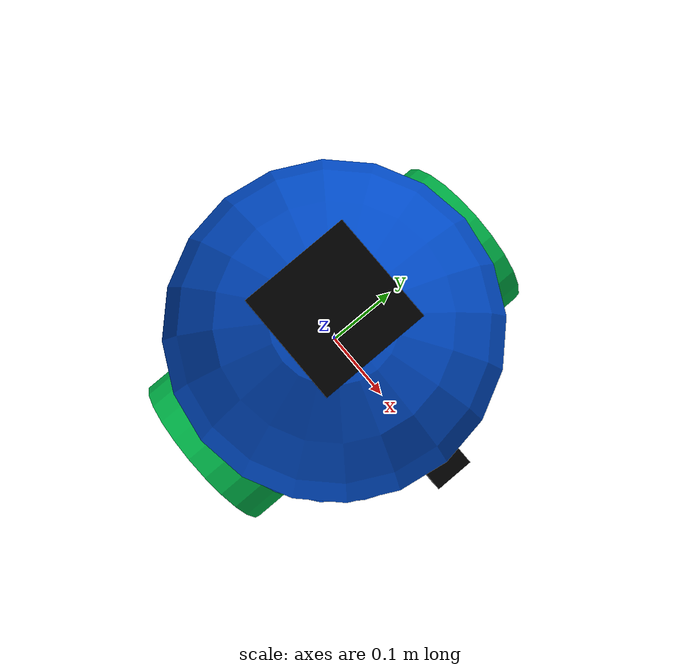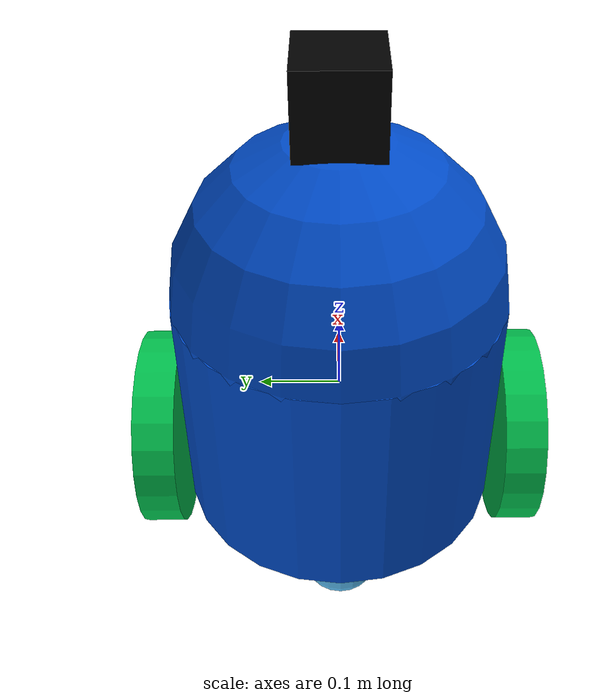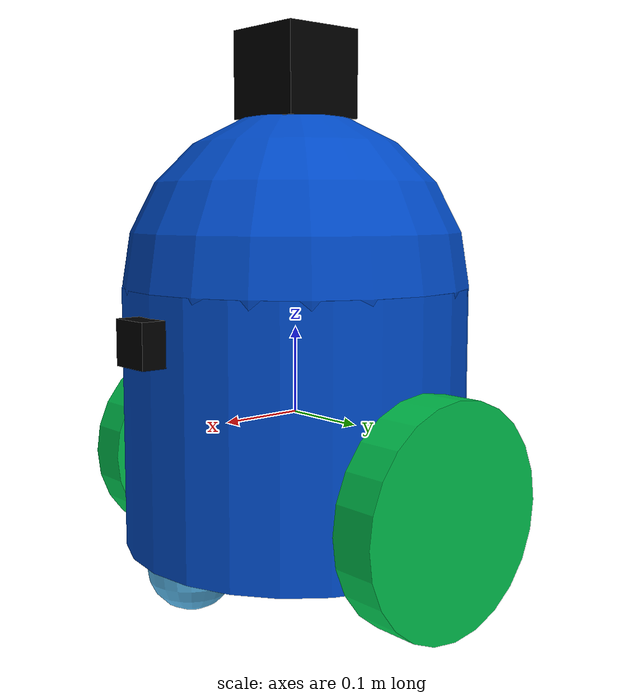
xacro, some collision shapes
<?xml version='1.0'?>

<robot name="my_robot" xmlns:xacro="http://www.ros.org/wiki/xacro">

  <xacro:include filename="$(find my_robot)/urdf/my_robot.gazebo" />

  <material name="blue">
    <color rgba="0 0.3 0.8 1"/>
  </material>

  <material name="green">
     <color rgba="0 0.75 0.3 1"/>
  </material>

  <material name="black">
     <color rgba="0. 0 0. 1"/>
  </material>

  <link name="robot_footprint"></link>

  <joint name="robot_footprint_joint" type="fixed">
    <origin xyz="0 0 0" rpy="0 0 0" />
    <parent link="robot_footprint"/>
    <child link="chassis" />
  </joint>

  <link name='chassis'>
    <pose>0 0 0.1 0 0 0</pose>

    <inertial>
      <mass value="15.0"/>
      <origin xyz="0.0 0 .1" rpy=" 0 0 0"/>
      <inertia
          ixx="0.1" ixy="0" ixz="0"
          iyy="0.1" iyz="0"
          izz="0.1"
      />
    </inertial>

    // HEAD
    <collision>
      <origin xyz="0 0 0.15" rpy=" 0 0 0"/>
      <geometry>
        <sphere radius=".2"/>
      </geometry>
    </collision>

    <visual>
      <origin xyz="0 0 0.15" rpy=" 0 0 0"/>
      <geometry>
        <sphere radius=".2"/>
      </geometry>
      <material name="blue"/>
    </visual>

    <collision name='chasis_collision'>
      <origin xyz="0 0 0" rpy=" 0 0 0"/>
      <geometry>
        <cylinder radius=".2" length=".3"/>
      </geometry>
    </collision>

    <visual name='chassis_visual'>
      <origin xyz="0 0 0" rpy=" 0 0 0"/>
      <geometry>
        <cylinder radius=".2" length=".3"/>
      </geometry>
      <material name="blue"/>
    </visual>

    <collision name='back_caster_collision'>
      <origin xyz="-0.15 0 -0.15" rpy=" 0 0 0"/>
      <geometry>
        <sphere radius="0.0499"/>
      </geometry>
    </collision>

    <visual name='back_caster_visual'>
      <origin xyz="-0.15 0 -0.15" rpy=" 0 0 0"/>
      <geometry>
        <sphere radius="0.05"/>
      </geometry>
      <material name="fuchsia"/>
    </visual>

    <collision name='front_caster_collision'>
      <origin xyz="0.15 0 -0.15" rpy=" 0 0 0"/>
      <geometry>
        <sphere radius="0.0499"/>
      </geometry>
    </collision>

    <visual name='front_caster_visual'>
      <origin xyz="0.15 0 -0.15" rpy=" 0 0 0"/>
      <geometry>
        <sphere radius="0.05"/>
      </geometry>
      <material name="fuchsia"/>
    </visual>
  </link>

  <link name ='right_wheel'>

   <inertial>
     <mass value="5.0"/>
     <origin xyz="0 0 0" rpy="0 1.5707 1.5707"/>
     <inertia
         ixx="0.1" ixy="0" ixz="0"
         iyy="0.1" iyz="0"
         izz="0.1"
     />
   </inertial>

    <visual name="right_wheel_visual">
      <origin xyz="0 0 0" rpy="0 1.5707 1.5707"/>
      <geometry>
        <cylinder radius="0.125" length="0.05"/>
      </geometry>
      <material name="green"/>
    </visual>

    <collision name="right_wheel_collision">
      <origin xyz="0 0 0" rpy="0 1.5707 1.5707"/>
      <geometry>
        <cylinder radius="0.125" length="0.05"/>
      </geometry>
    </collision>

  </link>

  <link name ='left_wheel'>

   <inertial>
     <mass value="5.0"/>
     <origin xyz="0 0 0" rpy="0 1.5707 1.5707"/>
     <inertia
         ixx="0.1" ixy="0" ixz="0"
         iyy="0.1" iyz="0"
         izz="0.1"
     />
   </inertial>

    <visual name="left_wheel_visual">
      <origin xyz="0 0 0" rpy="0 1.5707 1.5707"/>
      <geometry>
        <cylinder radius="0.125" length="0.05"/>
      </geometry>
      <material name="green"/>
    </visual>

    <collision name="left_wheel_collision">
      <origin xyz="0 0 0" rpy="0 1.5707 1.5707"/>
      <geometry>
        <cylinder radius="0.125" length="0.05"/>
      </geometry>
    </collision>

  </link>

  <joint type="continuous" name="right_wheel_hinge">
    <origin xyz="0 -0.225 -0.075" rpy="0 0 0"/>
    <child link="right_wheel"/>
    <parent link="chassis"/>
    <axis xyz="0 1 0" rpy="0 0 0"/>
    <limit effort="10000" velocity="1000"/>
    <dynamics damping="1.0" friction="1.0"/>
  </joint>

  <joint type="continuous" name="left_wheel_hinge">
    <origin xyz="0 0.225 -0.075" rpy="0 0 0"/>
    <child link="left_wheel"/>
    <parent link="chassis"/>
    <axis xyz="0 1 0" rpy="0 0 0"/>
    <limit effort="10000" velocity="1000"/>
    <dynamics damping="1.0" friction="1.0"/>
  </joint>

  <link name ='camera'>

   <inertial>
     <mass value="0.1"/>
     <origin xyz="0 0 0" rpy="0 0 0"/>
     <inertia
         ixx="1e-6" ixy="0" ixz="0"
         iyy="1e-6" iyz="0"
         izz="1e-6"
     />
   </inertial>

    <visual name="camera_visual">
      <origin xyz="0 0 0" rpy="0 0 0"/>
      <geometry>
        <box size="0.05 0.05 0.05"/>
      </geometry>
      <material name="black"/>
    </visual>

    <collision name="camera_collision">
      <origin xyz="0 0 0" rpy="0 0 0"/>
      <geometry>
        <box size="0.05 0.05 0.05"/>
      </geometry>
    </collision>

  </link>

  <joint type="fixed" name="camera_joint">
    <origin xyz="0.2 0. 0.1" rpy="0 0 0"/>
    <child link="camera"/>
    <parent link="chassis"/>
    <axis xyz="0 1 0" rpy="0 0 0"/>
  </joint>

  <link name ='hokuyo'>

   <inertial>
     <mass value="1e-5"/>
     <origin xyz="0 0 0" rpy="0 0 0"/>
     <inertia
         ixx="1e-6" ixy="0" ixz="0"
         iyy="1e-6" iyz="0"
         izz="1e-6"
     />
   </inertial>

    <visual name="hokuyo_visual">
      <origin xyz="0 0 0" rpy="0 0 0"/>
      <geometry>
        <mesh filename="package://my_robot/meshes/hokuyo.dae"/>
      </geometry>
      <material name="black"/>
    </visual>

    <collision name="hokuyo_collision">
      <origin xyz="0 0 0" rpy="0 0 0"/>
      <geometry>
        <box size="0.1 0.1 0.1"/>
      </geometry>
    </collision>

  </link>

  <joint type="fixed" name="hokuyo_joint">
    <origin xyz="0. 0. 0.39" rpy="0 0 0"/>
    <child link="hokuyo"/>
    <parent link="chassis"/>
    <axis xyz="0 1 0" rpy="0 0 0"/>
  </joint>

  <gazebo reference="chassis">
    <visual>
      <material>
        <ambient>0 0.3 0.8 1.0</ambient>
        <diffuse>0 0.3 0.8 1.0</diffuse>
        <specular>0 0.3 0.8 1.0</specular>
        <emissive>0 0.3 0.8 1.0</emissive>
      </material>
    </visual>
  </gazebo>

  <gazebo reference="right_wheel">
    <visual>
      <material>
        <ambient>0 0.75 0.3 1.0</ambient>
        <diffuse>0 0.75 0.3 1.0</diffuse>
        <specular>0 0.75 0.3 1.0</specular>
        <emissive>0 0.75 0.3 1.0</emissive>
      </material>
    </visual>
  </gazebo>

  <gazebo reference="left_wheel">
    <visual>
      <material>
        <ambient>0 0.75 0.3 1.0</ambient>
        <diffuse>0 0.75 0.3 1.0</diffuse>
        <specular>0 0.75 0.3 1.0</specular>
        <emissive>0 0.75 0.3 1.0</emissive>
      </material>
    </visual>
  </gazebo>

  <gazebo reference="camera">
    <visual>
      <material>
        <ambient>0 0 0 1</ambient>
        <diffuse>0 0 0 1</diffuse>
        <specular>0 0 0 1</specular>
        <emissive>0 0 0 1</emissive>
      </material>
    </visual>
  </gazebo>

  <gazebo reference="hokuyo">
    <visual>
      <material>
        <ambient>0 0 0 1</ambient>
        <diffuse>0 0 0 1</diffuse>
        <specular>0 0 0 1</specular>
        <emissive>0 0 0 1</emissive>
      </material>
    </visual>
  </gazebo>

</robot>
